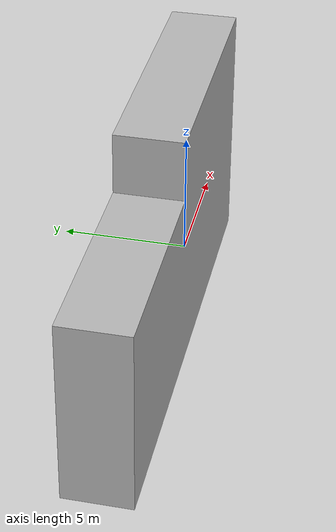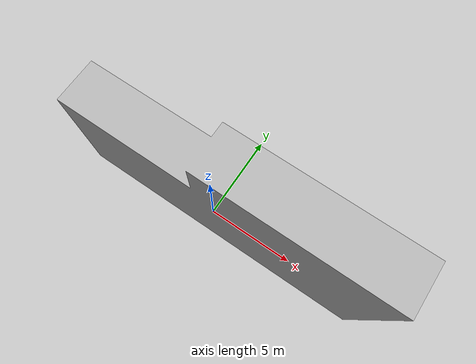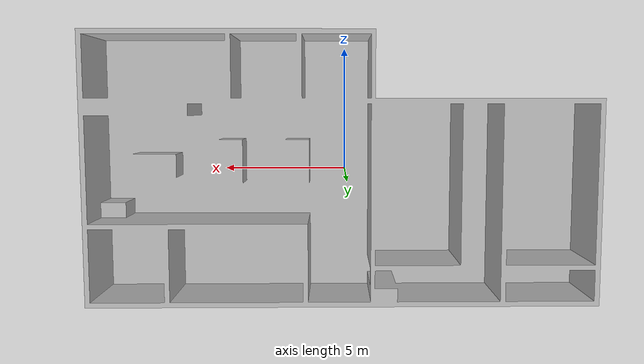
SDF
<?xml version="1.0" ?>
<sdf version="1.8">
  <model name="asan_hospital">
    <static>true</static>
    <link name="link">
      <visual name="visual">
        <geometry>
          <mesh>
            <uri>file:///home/kth/robot_dev/vicpinky_2/install/vicpinky_gazebo/share/vicpinky_gazebo/models/asan_hospital/meshes/asan_map.obj</uri>
            <scale>1 1 1</scale>
          </mesh>
        </geometry>
      </visual>
      <collision name="collision">
        <geometry>
          <mesh>
            <uri>file:///home/kth/robot_dev/vicpinky_2/install/vicpinky_gazebo/share/vicpinky_gazebo/models/asan_hospital/meshes/asan_map.obj</uri>
            <scale>1 1 1</scale>
          </mesh>
        </geometry>
      </collision>
      <cast_shadows>true</cast_shadows>
      <material>
        <ambient>0.4 0.4 0.4 1</ambient>
        <diffuse>0.6 0.6 0.6 1</diffuse>
        <specular>0.1 0.1 0.1 1</specular>
      </material>
    </link>
  </model>
</sdf>
